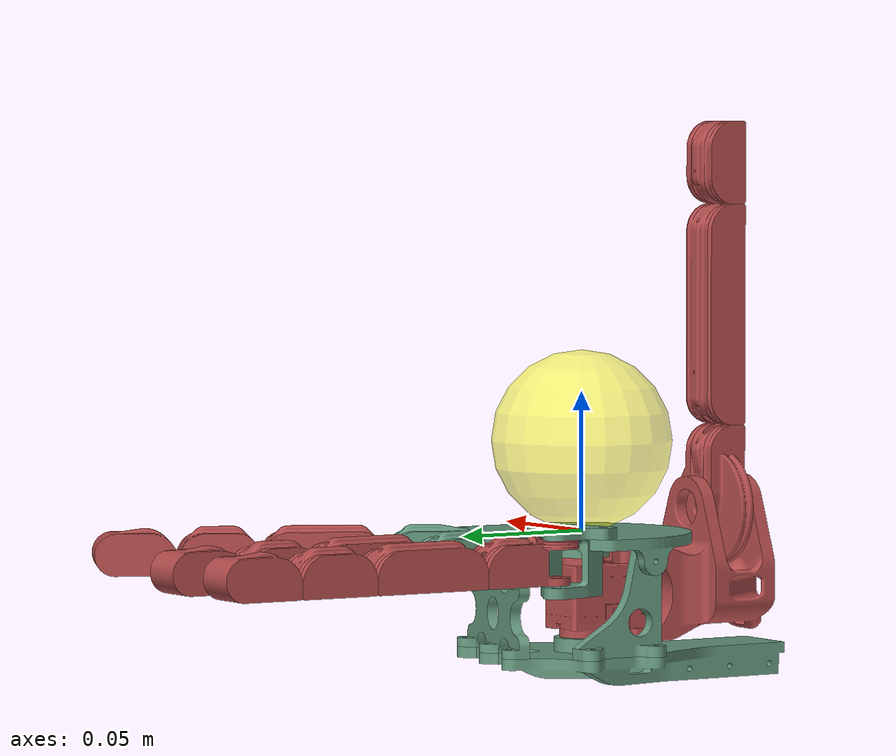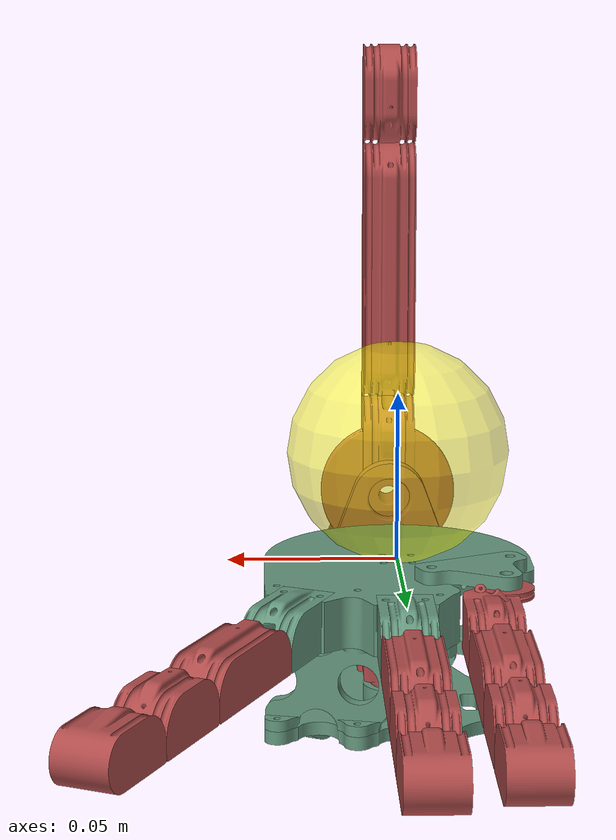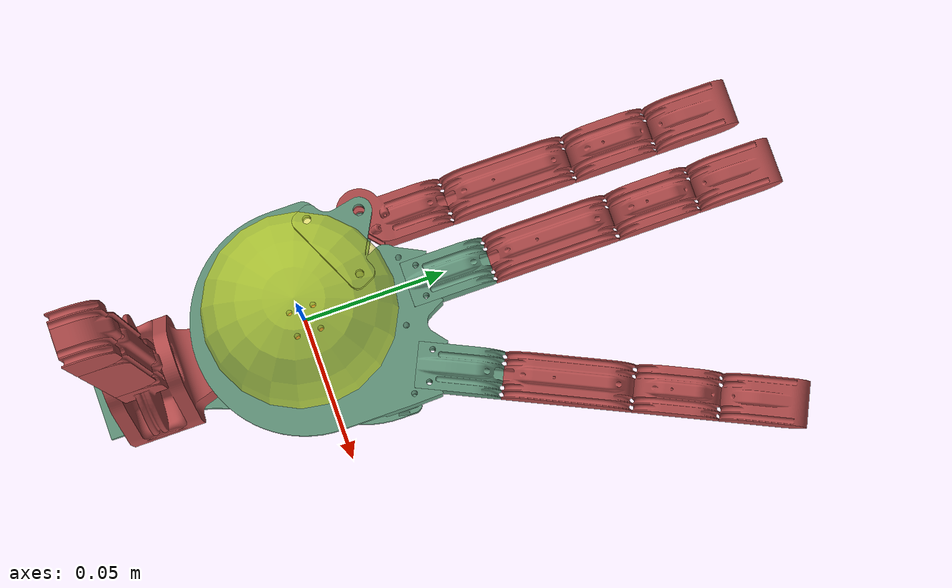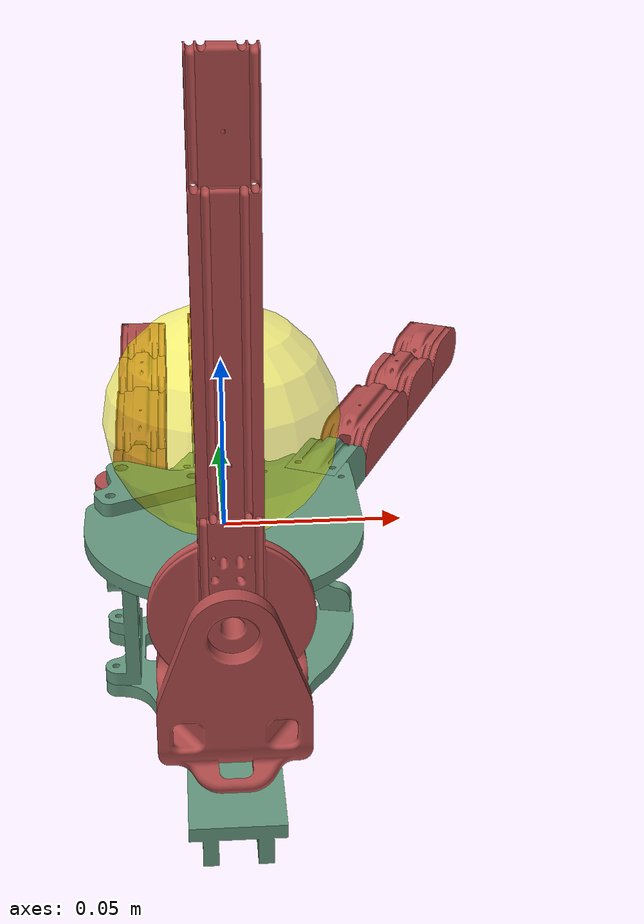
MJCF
<!-- TODO inertia position of virtual links and more usefull default classes -->

<mujoco model="hand_v1">
    <compiler angle="degree" coordinate="local" inertiafromgeom="true"/>
    <option timestep="0.005" gravity="0 0 -9.81" iterations="50" integrator="Euler"/>

    <asset>
        <!-- Meshes for physical links (no visual links) -->
        <mesh name="palm_bottom" file="assets/palm_bottom.stl" scale="0.001 0.001 0.001"/>
        <mesh name="palm_top" file="assets/palm_top.stl" scale="0.001 0.001 0.001"/>
        <mesh name="palm_side_1" file="assets/palm_side_1.stl" scale="0.001 0.001 0.001"/>
        <mesh name="palm_side_2" file="assets/palm_side_2.stl" scale="0.001 0.001 0.001"/>
        <mesh name="palm_dynxl_sprt" file="assets/palm_dynxl_sprt.stl" scale="0.001 0.001 0.001"/>

        <mesh name="pointer_1" file="assets/pointer_1.stl" scale="0.001 0.001 0.001"/>
        <mesh name="pointer_2" file="assets/pointer_2.stl" scale="0.001 0.001 0.001"/>
        <mesh name="pointer_3" file="assets/pointer_3.stl" scale="0.001 0.001 0.001"/>
        <mesh name="pointer_4" file="assets/pointer_4.stl" scale="0.001 0.001 0.001"/>

        <mesh name="middle_1" file="assets/mid_1.stl" scale="0.001 0.001 0.001"/>
        <mesh name="middle_2" file="assets/mid_2.stl" scale="0.001 0.001 0.001"/>
        <mesh name="middle_3" file="assets/mid_3.stl" scale="0.001 0.001 0.001"/>
        <mesh name="middle_4" file="assets/mid_4.stl" scale="0.001 0.001 0.001"/>

        <mesh name="pinki_base" file="assets/pinki_base.stl" scale="0.001 0.001 0.001"/>
        <mesh name="pinki_1" file="assets/pinki_1.stl" scale="0.001 0.001 0.001"/>
        <mesh name="pinki_2" file="assets/pinki_2.stl" scale="0.001 0.001 0.001"/>
        <mesh name="pinki_3" file="assets/pinki_3.stl" scale="0.001 0.001 0.001"/>
        <mesh name="pinki_4" file="assets/pinki_4.stl" scale="0.001 0.001 0.001"/>

        <mesh name="dynamixel" file="assets/dynamixel.stl" scale="0.001 0.001 0.001"/>
        <mesh name="thumb_1" file="assets/thumb_1.stl" scale="0.001 0.001 0.001"/>
        <mesh name="thumb_2" file="assets/thumb_2.stl" scale="0.001 0.001 0.001"/>
        <mesh name="thumb_3" file="assets/thumb_3.stl" scale="0.001 0.001 0.001"/>
        <mesh name="thumb_4" file="assets/thumb_4.stl" scale="0.001 0.001 0.001"/>

        <!-- adjust scaling. stl in mm and not in m, here we choose metric system, eg, lengh 1 = 1 meter-->
    </asset>

    <default >
        <default class="class1">
            <!-- Default geom properties -->
            <geom rgba="0.4 0.6 0.5 1" type="mesh" density="662" friction="1 0.005 0.001" condim="3" margin="0.0005" contype="1" conaffinity="1"/>
            <!-- Default joint properties -->
            <joint type="hinge" limited="true" damping="0.05" armature="0.001" margin="0.01" frictionloss="0.001"/>
            <!-- Default actuator properties -->
            <position ctrllimited="true" forcelimited="true" forcerange="-000.1 000.1" kp="2."/>
            <!-- Default tendon properties -->
            <tendon limited="true" range="-0.001 0.001"/>
        </default>

        <default class="class2">
            <!-- Default geom properties -->
            <geom rgba="0.7 0.3 0.3 1" type="mesh" density="662" friction="1 0.005 0.001" condim="3" margin="0.0005" contype="1" conaffinity="1"/>
            <!-- Default joint properties -->
            <joint type="hinge" limited="true" damping="0.05" armature="0.001" margin="0.01" frictionloss="0.001"/>
            <!-- Default actuator properties -->
            <position ctrllimited="true" forcelimited="true" forcerange="-1 1" kp="2."/>
        </default>

        <position ctrllimited="true" forcelimited="true" forcerange="-2 2" kp="2."/>
        <joint type="hinge" limited="true" damping="0.05" armature="0.01" margin="0.01" frictionloss="0.001"/>
        <!-- Default tendon properties -->
        <tendon limited="true" range="-0.001 0.001"/>
    </default>

    <worldbody>
        <light diffuse=".5 .5 .5" pos="0 0 3" dir="0 0 -1"/>

        <!-- sphere in hand -->
        <body>
            <geom type="sphere" size="0.0325" rgba="1 1 0 0.5" pos="0 0 0.0326" mass="0.1" friction="1 0.005 0.001"/>
            <freejoint/>
        </body>

        <!-- Hand: Base link, palm-->
        <body name="Palm" pos="0 0 0">
            <!-- Palm geoms-->
            <geom type="mesh" mesh="palm_bottom" mass = "0.1" class="class1"/>
            <geom type="mesh" mesh="palm_top" mass = "0.1" class="class1"/>
            <geom type="mesh" mesh="palm_side_1" mass = "0.1" class="class1"/>
            <geom type="mesh" mesh="palm_side_2" mass = "0.1" class="class1"/>
            <geom type="mesh" mesh="palm_dynxl_sprt" mass = "0.1" class="class1"/>

            <!-- Pointer 2Dof ############################################################################################################-->
            <geom type="mesh" mesh="pointer_1" mass = "0.05" class="class1"/>

            <!-- Virtual link for first rolling joint -->
            <body name="pointer_virtual_link_1" pos="0 0 0">
                <joint type="hinge" name="pointer_virtual_joint_1" axis="0.91 -0.42 0" pos="0.0423911 0.0456619 -0.010" range="-1 45"/>
                <inertial pos="0 0 0" mass="1e-6" diaginertia="1e-15 1e-15 1e-15" />

                <!-- Second link -->
                <body name="pointer_2" pos="0 0 0">
                    <joint type="hinge" name="pointer_joint_1" axis="0.91 -0.42 0" pos="0.0508435 0.063788 -0.01" range="-1 45"/>
                    <geom type="mesh" mesh="pointer_2" class="class2" mass = "0.05"/>

                    <!-- Virtual link for second rolling joint -->
                    <body name="pointer_virtual_link_2" pos="0 0 0">
                        <joint type="hinge" name="pointer_virtual_joint_2" axis="0.91 -0.42 0" pos="0.061409 0.0864457 -0.01" range="-1 45"/>
                        <inertial pos="0 0 0" mass="1e-6" diaginertia="1e-15 1e-15 1e-15" />

                        <!-- Third link -->
                        <body name="pointer_3" pos="0 0 0">
                            <joint type="hinge" name="pointer_joint_2" axis="0.91 -0.42 0" pos="0.0698613 0.1045719 -0.01" range="-1 45"/>
                            <geom type="mesh" mesh="pointer_3" class="class2" mass = "0.05"/>

                            <!-- Virtual link for third rolling joint -->
                            <body name="pointer_virtual_link_3" pos="0 0 0">
                                <joint type="hinge" name="pointer_virtual_joint_3" axis="0.91 -0.42 0" pos="0.0740875 0.1126349 -0.01" range="-1 45"/>
                                <inertial pos="0 0 0" mass="1e-6" diaginertia="1e-15 1e-15 1e-15" />

                                <!-- Fourth link -->
                                <body name="pointer_4" pos="0 0 0">
                                    <joint type="hinge" name="pointer_joint_3" axis="0.91 -0.42 0" pos="0.0825399 0.1317611 -0.01" range="-1 45"/>
                                    <geom type="mesh" mesh="pointer_4" class="class2" mass = "0.05"/>

                                </body>
                            </body>
                        </body>
                    </body>
                </body>
            </body>

            <!-- Middle finger 2Dof ############################################################################################################-->
            <geom type="mesh" mesh="middle_1" mass = "0.1" class="class1"/>

            <!-- Virtual link for first rolling joint -->
            <body name="middle_virtual_link_1" pos="0 0 0">
                <joint type="hinge" name="middle_virtual_joint_1" axis="1 0 0" pos="0.08 0.0568333 -0.01" range="-1 45"/>
                <inertial pos="0 0 0" mass="1e-6" diaginertia="1e-15 1e-15 1e-15" />

                <!-- Second link -->
                <body name="middle_2" pos="0 0 0">
                    <joint type="hinge" name="middle_joint_1" axis="1 0 0" pos="0.008 0.0768333 -0.01" range="-1 45"/>
                    <geom type="mesh" mesh="middle_2" class="class2" mass = "0.1"/>

                    <!-- Virtual link for second rolling joint -->
                    <body name="middle_virtual_link_2" pos="0 0 0">
                        <joint type="hinge" name="middle_virtual_joint_2" axis="1 0 0" pos="0.008 0.1018333 -0.01" range="-1 45"/>
                        <inertial pos="0 0 0" mass="1e-6" diaginertia="1e-15 1e-15 1e-15" />

                        <!-- Third link -->
                        <body name="middle_3" pos="0 0 0">
                            <joint type="hinge" name="middle_joint_2" axis="1 0 0" pos="0.008 0.1218333 -0.01" range="-1 45"/>
                            <geom type="mesh" mesh="middle_3" class="class2" mass = "0.1"/>

                            <!-- Virtual link for third rolling joint -->
                            <body name="middle_virtual_link_3" pos="0 0 0">
                                <joint type="hinge" name="middle_virtual_joint_3" axis="1 0 0" pos="0.008 0.1318333 -0.01" range="-1 45"/>
                                <inertial pos="0 0 0" mass="1e-6" diaginertia="1e-15 1e-15 1e-15" />

                                <!-- Fourth link -->
                                <body name="middle_4" pos="0 0 0">
                                    <joint type="hinge" name="middle_joint_3" axis="1 0 0" pos="0.008 0.1518333 -0.01" range="-1 45"/>
                                    <geom type="mesh" mesh="middle_4" class="class2" mass = "0.1"/>

                                </body>
                            </body>
                        </body>
                    </body>
                </body>
            </body>

            <!-- 3Dof finger ############################################################################################################-->
            <geom type="mesh" mesh="pinki_base" mass = "0.1" class="class1"/>

            <!-- First link (pin joint) -->
            <body name="pinki_1" pos="0 0 0">
                <joint type="hinge" name="pinki_joint_0" axis="0 0 1" pos="-0.0294176 0.0296474 -0.0028" range="0 120"/>
                <geom type="mesh" mesh="pinki_1" class="class2" mass = "0.1"/>

                <!-- Virtual link for first rolling joint -->
                <body name="pinki_virtual_link_1" pos="0 0 0">
                    <joint type="hinge" name="pinki_virtual_joint_1" axis="1 0 0" pos="-0.032 0.0496474 -0.0108" range="-1 45"/>
                    <inertial pos="0 0 0" mass="1e-6" diaginertia="1e-15 1e-15 1e-15" />

                    <!-- Second link -->
                    <body name="pinki_2" pos="0 0 0">
                        <joint type="hinge" name="pinki_joint_1" axis="1 0 0" pos="-0.032 0.0696474 -0.0108" range="-1 45"/>
                        <geom type="mesh" mesh="pinki_2" class="class2" mass = "0.1"/>

                        <!-- Virtual link for second rolling joint -->
                        <body name="pinki_virtual_link_2" pos="0 0 0">
                            <joint type="hinge" name="pinki_virtual_joint_2" axis="1 0 0" pos="-0.032 0.0946474 -0.0108" range="-1 45"/>
                            <inertial pos="0 0 0" mass="1e-6" diaginertia="1e-15 1e-15 1e-15" />

                            <!-- Third link -->
                            <body name="pinki_3" pos="0 0 0">
                                <joint type="hinge" name="pinki_joint_2" axis="1 0 0" pos="-0.032 0.1146474 -0.0108" range="-1 45"/>
                                <geom type="mesh" mesh="pinki_3" class="class2" mass = "0.1"/>

                                <!-- Virtual link for third rolling joint -->
                                <body name="pinki_virtual_link_3" pos="0 0 0">
                                    <joint type="hinge" name="pinki_virtual_joint_3" axis="1 0 0" pos="-0.032 0.1246474 -0.0108" range="-1 45"/>
                                    <inertial pos="0 0 0" mass="1e-6" diaginertia="1e-15 1e-15 1e-15" />

                                    <!-- Fourth link -->
                                    <body name="pinki_4" pos="0 0 0">
                                        <joint type="hinge" name="pinki_joint_3" axis="1 0 0" pos="-0.032 0.1446474 -0.0108" range="-1 45"/>
                                        <geom type="mesh" mesh="pinki_4" class="class2" mass = "0.1"/>

                                    </body>
                                </body>
                            </body>
                        </body>
                    </body>
                </body>
            </body>

            <!-- Thumb 4Dof finger ############################################################################################################-->
            <!-- First link dynamixel and thumb0 (pin joint ) -->
            <body name="dynamixel_thumb" pos="0 0 0">
                <joint type="hinge" name="thumb_joint_0" axis="0 0 1" pos="0 0 0" range="-30 90"/>
                <geom type="mesh" mesh="dynamixel" class="class2" mass = "0.1"/>
                <geom type="mesh" mesh="thumb_1" class="class2" mass = "0.1"/>

                <!-- Second link -->
                <body name="thumb_2" pos="0 0 0">
                    <joint type="hinge" name="thumb_joint_1" axis="0 1 0" pos="0.0 -0.045 0.0065" range="-90 90"/>
                    <geom type="mesh" mesh="thumb_2" class="class2" mass = "0.1"/>

                    <!-- Virtual link for first rolling joint -->
                    <body name="thumb_virtual_link_2" pos="0 0 0">
                        <joint type="hinge" name="thumb_virtual_joint_2" axis="-1 0 0" pos="-0.008 -0.0605 0.0265" range="-1 45"/>
                        <inertial pos="0 0 0" mass="1e-6" diaginertia="1e-15 1e-15 1e-15" />

                        <!-- Third link -->
                        <body name="thumb_3" pos="0 0 0">
                            <joint type="hinge" name="thumb_joint_2" axis="-1 0 0" pos="-0.008 -0.0605 0.0465" range="-1 45"/>
                            <geom type="mesh" mesh="thumb_3" class="class2" mass = "0.1"/>

                            <!-- Virtual link for second rolling joint -->
                            <body name="thumb_virtual_link_3" pos="0 0 0">
                                <joint type="hinge" name="thumb_virtual_joint_3" axis="-1 0 0" pos="-0.008 -0.0606 0.1065" range="-1 45"/>
                                <inertial pos="0 0 0" mass="1e-6" diaginertia="1e-15 1e-15 1e-15" />

                                <!-- Fourth link -->
                                <body name="thumb_4" pos="0 0 0">
                                    <joint type="hinge" name="thumb_joint_3" axis="-1 0 0" pos="-0.008 -0.0606 0.1265" range="-1 45"/>
                                    <geom type="mesh" mesh="thumb_4" class="class2" mass = "0.1"/>

                                </body>
                            </body>
                        </body>
                    </body>
                </body>
            </body>
        </body>
    </worldbody>

    <!-- neighboring bodies are excluded from contact calculation -->
    <contact>
        <!-- pointer -->
        <exclude body1="Palm" body2="pointer_2"/>
        <exclude body1="Palm" body2="pointer_virtual_link_1"/>
        <exclude body1="pointer_2" body2="pointer_virtual_link_1"/>

        <exclude body1="pointer_2" body2="pointer_3"/>
        <exclude body1="pointer_2" body2="pointer_virtual_link_2"/>
        <exclude body1="pointer_3" body2="pointer_virtual_link_2"/>

        <exclude body1="pointer_3" body2="pointer_4"/>
        <exclude body1="pointer_3" body2="pointer_virtual_link_3"/>
        <exclude body1="pointer_4" body2="pointer_virtual_link_3"/>

        <!-- middle -->
        <exclude body1="Palm" body2="middle_2"/>
        <exclude body1="Palm" body2="middle_virtual_link_1"/>
        <exclude body1="middle_2" body2="middle_virtual_link_1"/>

        <exclude body1="middle_2" body2="middle_3"/>
        <exclude body1="middle_2" body2="middle_virtual_link_2"/>
        <exclude body1="middle_3" body2="middle_virtual_link_2"/>

        <exclude body1="middle_3" body2="middle_4"/>
        <exclude body1="middle_3" body2="middle_virtual_link_3"/>
        <exclude body1="middle_4" body2="middle_virtual_link_3"/>

        <!-- pinki -->
        <exclude body1="Palm" body2="pinki_1"/>

        <exclude body1="pinki_1" body2="pinki_2"/>
        <exclude body1="pinki_1" body2="pinki_virtual_link_1"/>
        <exclude body1="pinki_2" body2="pinki_virtual_link_1"/>

        <exclude body1="pinki_2" body2="pinki_3"/>
        <exclude body1="pinki_2" body2="pinki_virtual_link_2"/>
        <exclude body1="pinki_3" body2="pinki_virtual_link_2"/>

        <exclude body1="pinki_3" body2="pinki_4"/>
        <exclude body1="pinki_3" body2="pinki_virtual_link_3"/>
        <exclude body1="pinki_4" body2="pinki_virtual_link_3"/>

        <!-- thumb -->
        <exclude body1="Palm" body2="dynamixel_thumb"/>

        <exclude body1="dynamixel_thumb" body2="thumb_2"/>

        <exclude body1="thumb_2" body2="thumb_3"/>
        <exclude body1="thumb_2" body2="thumb_virtual_link_2"/>
        <exclude body1="thumb_3" body2="thumb_virtual_link_2"/>

        <exclude body1="thumb_3" body2="thumb_4"/>
        <exclude body1="thumb_3" body2="thumb_virtual_link_3"/>
        <exclude body1="thumb_4" body2="thumb_virtual_link_3"/>
    </contact>

    <tendon >
        <!-- For rolling contact joints: Constrain virtual joint x to have the same angle as joint x -->
        <!-- Same for underactuated finger tips -->

        <!-- pointer -->
        <fixed name="constraint_pointer_joint_1">
            <joint joint="pointer_virtual_joint_1" coef="1"/>
            <joint joint="pointer_joint_1" coef="-1"/>
        </fixed>
        <fixed name="constraint_pointer_joint_2">
            <joint joint="pointer_virtual_joint_2" coef="1"/>
            <joint joint="pointer_joint_2" coef="-1"/>
        </fixed>
        <fixed name="constraint_pointer_joint_3">
            <joint joint="pointer_virtual_joint_3" coef="1"/>
            <joint joint="pointer_joint_3" coef="-1"/>
        </fixed>
        <fixed name="pointer_underactuation">
            <joint joint="pointer_joint_2" coef="1"/>
            <joint joint="pointer_joint_3" coef="-1"/>
        </fixed>

        <!-- middle -->
        <fixed name="constraint_middle_joint_1">
            <joint joint="middle_virtual_joint_1" coef="1"/>
            <joint joint="middle_joint_1" coef="-1"/>
        </fixed>
        <fixed name="constraint_middle_joint_2">
            <joint joint="middle_virtual_joint_2" coef="1"/>
            <joint joint="middle_joint_2" coef="-1"/>
        </fixed>
        <fixed name="constraint_middle_joint_3">
            <joint joint="middle_virtual_joint_3" coef="1"/>
            <joint joint="middle_joint_3" coef="-1"/>
        </fixed>
        <fixed name="middle_underactuation">
            <joint joint="middle_joint_2" coef="1"/>
            <joint joint="middle_joint_3" coef="-1"/>
        </fixed>

        <!-- pinki -->
        <fixed name="constraint_pinki_joint_1">
            <joint joint="pinki_virtual_joint_1" coef="1"/>
            <joint joint="pinki_joint_1" coef="-1"/>
        </fixed>
        <fixed name="constraint_pinki_joint_2">
            <joint joint="pinki_virtual_joint_2" coef="1"/>
            <joint joint="pinki_joint_2" coef="-1"/>
        </fixed>
        <fixed name="constraint_pinki_joint_3">
            <joint joint="pinki_virtual_joint_3" coef="1"/>
            <joint joint="pinki_joint_3" coef="-1"/>
        </fixed>
        <fixed name="pinki_underactuation">
            <joint joint="pinki_joint_2" coef="1"/>
            <joint joint="pinki_joint_3" coef="-1"/>
        </fixed>

        <!-- thumb -->
        <fixed name="constraint_thumb_joint_2">
            <joint joint="thumb_virtual_joint_2" coef="1"/>
            <joint joint="thumb_joint_2" coef="-1"/>
        </fixed>
        <fixed name="constraint_thumb_joint_3">
            <joint joint="thumb_virtual_joint_3" coef="1"/>
            <joint joint="thumb_joint_3" coef="-1"/>
        </fixed>
    </tendon>

    <actuator>
        <!-- for rolling contact: ctrl in radiant / 2 (because actually 2 joints per real joint) -->

        <!-- pointer -->
        <position joint="pointer_joint_1" kp="1" ctrlrange="0 0.7854 "/>
        <position joint="pointer_joint_2" kp="1" ctrlrange="0 0.7854 "/>

        <!-- middle -->
        <position joint="middle_joint_1" kp="1" ctrlrange="0 0.7854 "/>
        <position joint="middle_joint_2" kp="1" ctrlrange="0 0.7854 "/>

        <!-- pinki -->
        <position joint="pinki_joint_0" kp="1" ctrlrange="0 2 "/>  <!-- pin -->
        <position joint="pinki_joint_1" kp="1" ctrlrange="0 0.7854 "/>
        <position joint="pinki_joint_2" kp="1" ctrlrange="0 0.7854 "/>

        <!-- thumb -->
        <position joint="thumb_joint_0" kp="0.5" ctrlrange="-0.5236 1.5708"/>  <!-- pin -->
        <position joint="thumb_joint_1" kp="0.5" ctrlrange="-1.4 1.4"/> <!-- pin -->
        <position joint="thumb_joint_2" kp="1" ctrlrange="0 0.7854"/>
        <position joint="thumb_joint_3" kp="1" ctrlrange="0 0.7854"/>
    </actuator>
</mujoco>
